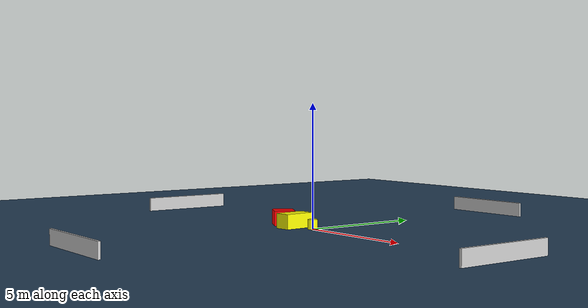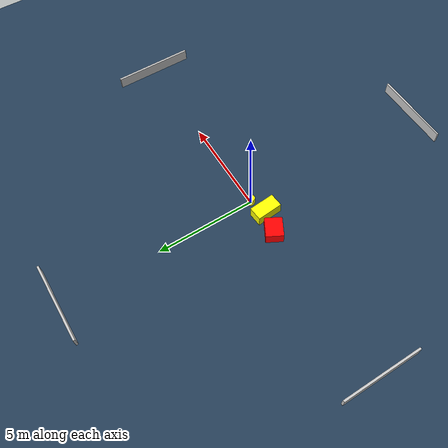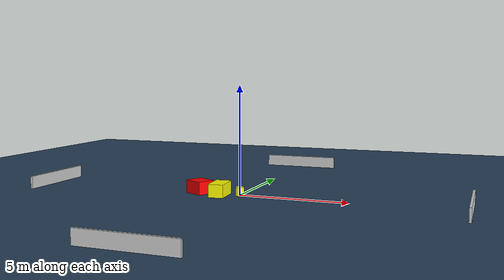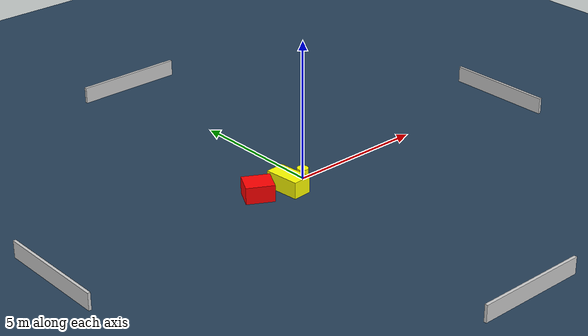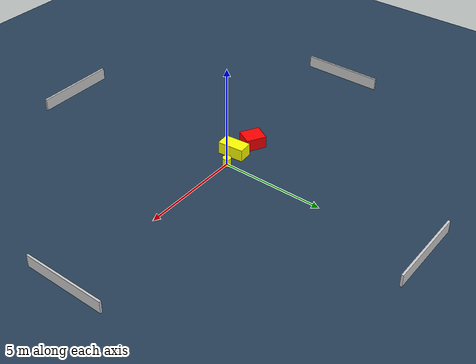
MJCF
<?xml version="1.0" ?>
<mujoco model="generated_environment">
  <option timestep="0.01" integrator="RK4" cone="elliptic"/>
  <default>
    <geom density="1"/>
  </default>
  <asset>
    <texture builtin="gradient" height="3072" name="skybox" rgb1="0.3 0.5 0.7" rgb2="0 0 0" type="skybox" width="512"/>
    <texture builtin="checker" height="300" name="groundplane" rgb1="0.2 0.3 0.4" rgb2="0.1 0.2 0.3" type="2d" width="300"/>
    <material name="groundplane" reflectance="0.2" texrepeat="5 5" texture="groundplane"/>
  </asset>
  <worldbody>
    <light dir="0 0 -1" directional="true" pos="0 0 1.5"/>
    <geom condim="3" friction="0.5 0.005 0.001" material="groundplane" name="floor" pos="0 0 0" size="0 0 0.05" type="plane"/>
    <body name="walls">
      <geom name="wall_1" condim="4" pos="-10.0 0.0 0.3" rgba="0.800000011920929 0.800000011920929 0.800000011920929 1.0" size="0.05 2.0 0.3" type="box"/>
      <geom name="wall_2" condim="4" pos="10.0 0.0 0.3" rgba="0.800000011920929 0.800000011920929 0.800000011920929 1.0" size="0.05 2.0 0.3" type="box"/>
      <geom name="wall_3" condim="4" pos="0.0 -10.0 0.3" rgba="0.800000011920929 0.800000011920929 0.800000011920929 1.0" size="2.0 0.05 0.3" type="box"/>
      <geom name="wall_4" condim="4" pos="0.0 10.0 0.3" rgba="0.800000011920929 0.800000011920929 0.800000011920929 1.0" size="2.0 0.05 0.3" type="box"/>
    </body>
    <body name="robot">
      <joint name="joint_x" type="slide" pos="0 0 0" axis="1 0 0"/>
      <joint name="joint_y" type="slide" pos="0 0 0" axis="0 1 0"/>
      <geom name="robot" type="cylinder" pos="0.0 0.0 0.2" size="0.2 0.2 0.0" mass="5.0" friction="1.0 0.005 0.0001" condim="4" rgba="1.0 1.0 0.0 1.0"/>
    </body>
    <body name="obstacle_1_movable">
      <geom name="obstacle_1_movable" condim="4" pos="-0.8811347835383996 -0.27223082721110503 0.3" euler="0 0 94.90726590919624" friction="0.0 0.005 0.001" rgba="1.0 1.0 0.0 1.0" size="0.6439541343901796 0.3464400301104247 0.3" type="box" mass="0.1"/>
      <joint type="free"/>
    </body>
    <body name="obstacle_2_static">
      <geom name="obstacle_2_static" condim="4" pos="-1.9879179763858068 -0.011205042811737198 0.3" euler="0 0 61.48738254627895" friction="0.0 0.005 0.001" rgba="1.0 0.0 0.0 1.0" size="0.42751206859430924 0.4948670783599406 0.3" type="box"/>
    </body>
  </worldbody>
  <actuator>
    <motor name="actuator_x" joint="joint_x" gear="1" ctrlrange="-1 1"/>
    <motor name="actuator_y" joint="joint_y" gear="1" ctrlrange="-1 1"/>
  </actuator>
</mujoco>
